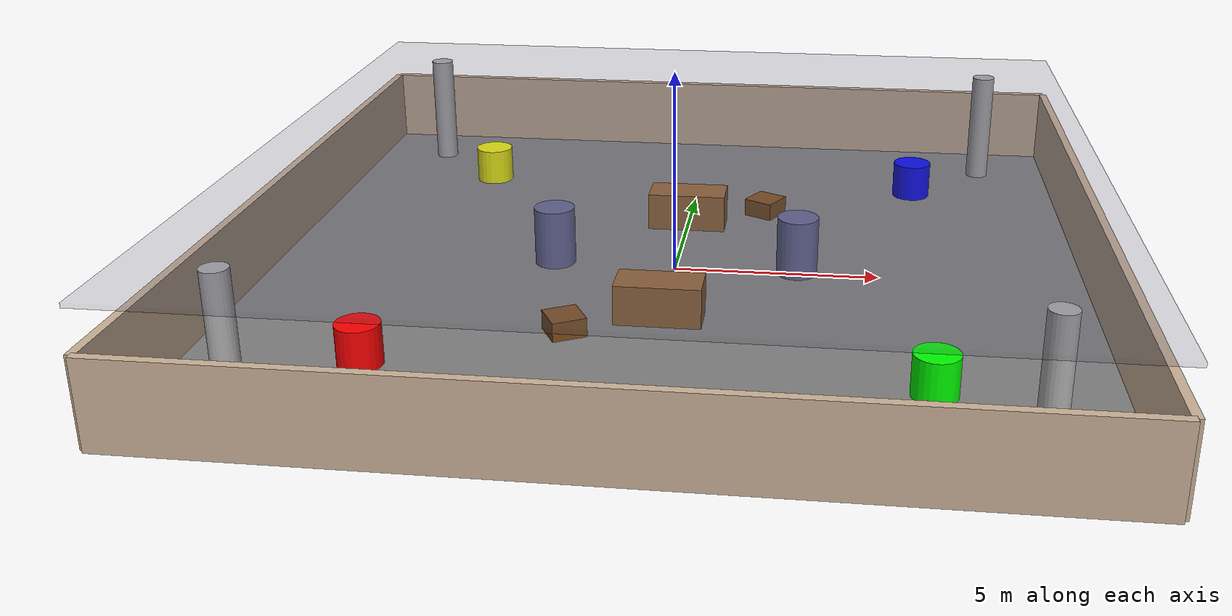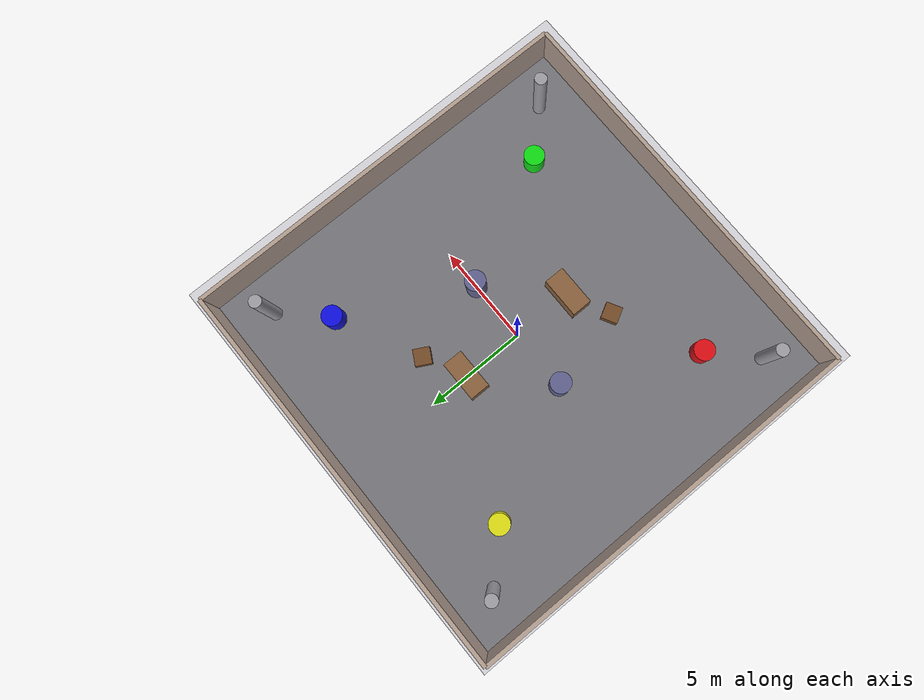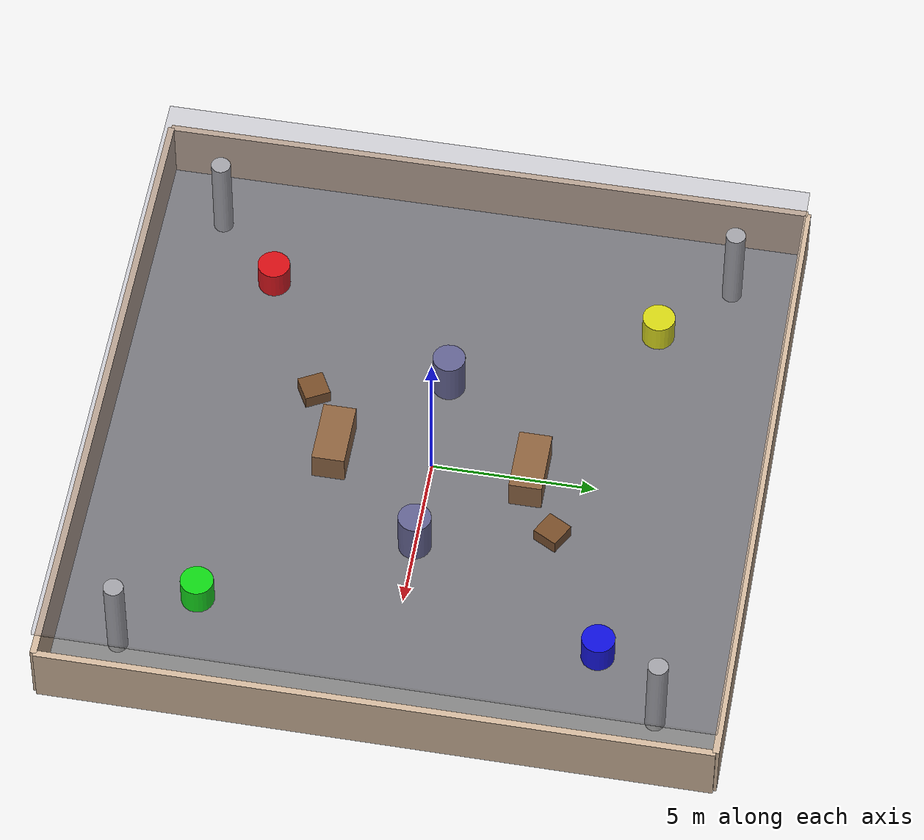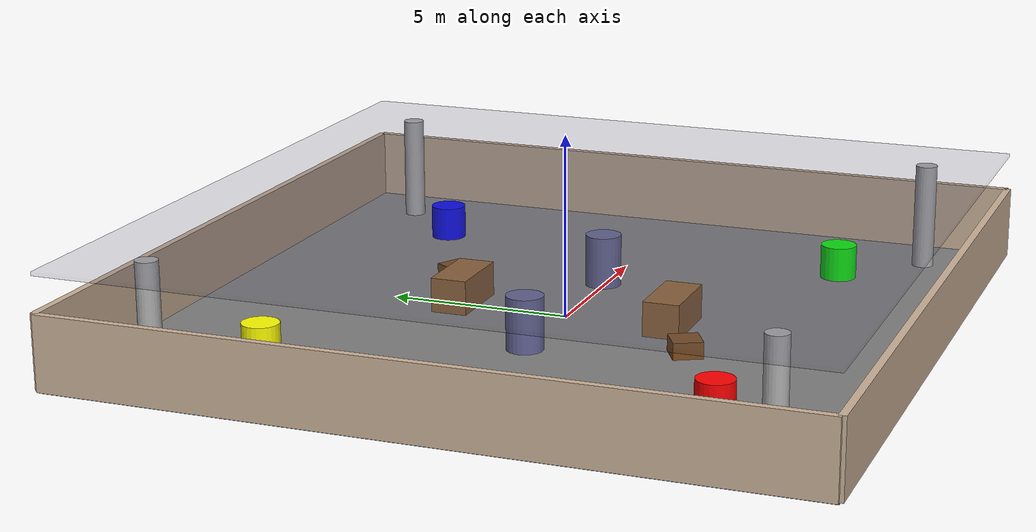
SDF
<?xml version="1.0" ?>
<sdf version="1.6">
  <world name="campus_world">

    <!-- Physics - tuned for skid steer -->
    <physics type="ode">
      <max_step_size>0.001</max_step_size>
      <real_time_factor>1</real_time_factor>
      <real_time_update_rate>1000</real_time_update_rate>
      <ode>
        <solver>
          <type>quick</type>
          <iters>150</iters>
          <sor>1.3</sor>
          <use_dynamic_moi_rescaling>true</use_dynamic_moi_rescaling>
        </solver>
        <constraints>
          <cfm>0.0001</cfm>
          <erp>0.2</erp>
          <contact_max_correcting_vel>100</contact_max_correcting_vel>
          <contact_surface_layer>0.001</contact_surface_layer>
        </constraints>
      </ode>
    </physics>

    <include>
      <uri>model://sun</uri>
    </include>

    <!-- ✅ REMOVED ground_plane include — replaced with custom below -->

    <model name="campus_building">
      <static>true</static>
      <pose>0 0 0 0 0 0</pose>

      <!-- ✅ Floor with friction on COLLISION (not visual) -->
      <link name="floor">
        <collision name="collision">
          <geometry>
            <box>
              <size>20 20 0.1</size>
            </box>
          </geometry>
          <!-- ✅ FRICTION GOES HERE -->
          <surface>
            <friction>
              <ode>
                <mu>0.6</mu>       <!-- enough grip for forward motion -->
                <mu2>0.6</mu2>     <!-- same in lateral — wheels handle slip -->
              </ode>
              <torsional>
                <coefficient>0.1</coefficient>
                <use_patch_radius>false</use_patch_radius>
              </torsional>
            </friction>
            <contact>
              <ode>
                <kp>100000.0</kp>  <!-- match wheel kp -->
                <kd>10.0</kd>
                <max_vel>0.1</max_vel>
                <min_depth>0.001</min_depth>
              </ode>
            </contact>
          </surface>
        </collision>
        <visual name="visual">
          <geometry>
            <box>
              <size>20 20 0.1</size>
            </box>
          </geometry>
          <material>
            <ambient>0.5 0.5 0.5 1</ambient>
            <diffuse>0.5 0.5 0.5 1</diffuse>
          </material>
        </visual>
      </link>

      <!-- Roof -->
      <link name="roof">
        <pose>0 0 3 0 0 0</pose>
        <visual name="visual">
          <geometry>
            <box><size>20 20 0.1</size></box>
          </geometry>
          <material>
            <ambient>0.3 0.3 0.4 0.2</ambient>
            <diffuse>0.3 0.3 0.4 0.2</diffuse>
            <transparency>0.8</transparency>
          </material>
        </visual>
      </link>

      <!-- Pillars -->
      <link name="pillar1">
        <pose>-8 -8 1.5 0 0 0</pose>
        <collision name="collision">
          <geometry><cylinder><radius>0.3</radius><length>3</length></cylinder></geometry>
        </collision>
        <visual name="visual">
          <geometry><cylinder><radius>0.3</radius><length>3</length></cylinder></geometry>
          <material><ambient>0.7 0.7 0.7 1</ambient></material>
        </visual>
      </link>
      <link name="pillar2">
        <pose>8 -8 1.5 0 0 0</pose>
        <collision name="collision">
          <geometry><cylinder><radius>0.3</radius><length>3</length></cylinder></geometry>
        </collision>
        <visual name="visual">
          <geometry><cylinder><radius>0.3</radius><length>3</length></cylinder></geometry>
          <material><ambient>0.7 0.7 0.7 1</ambient></material>
        </visual>
      </link>
      <link name="pillar3">
        <pose>-8 8 1.5 0 0 0</pose>
        <collision name="collision">
          <geometry><cylinder><radius>0.3</radius><length>3</length></cylinder></geometry>
        </collision>
        <visual name="visual">
          <geometry><cylinder><radius>0.3</radius><length>3</length></cylinder></geometry>
          <material><ambient>0.7 0.7 0.7 1</ambient></material>
        </visual>
      </link>
      <link name="pillar4">
        <pose>8 8 1.5 0 0 0</pose>
        <collision name="collision">
          <geometry><cylinder><radius>0.3</radius><length>3</length></cylinder></geometry>
        </collision>
        <visual name="visual">
          <geometry><cylinder><radius>0.3</radius><length>3</length></cylinder></geometry>
          <material><ambient>0.7 0.7 0.7 1</ambient></material>
        </visual>
      </link>

      <!-- Walls -->
      <link name="wall_north">
        <pose>0 10 1 0 0 0</pose>
        <collision name="collision">
          <geometry><box><size>20 0.2 2</size></box></geometry>
        </collision>
        <visual name="visual">
          <geometry><box><size>20 0.2 2</size></box></geometry>
          <material><ambient>0.8 0.7 0.6 1</ambient><diffuse>0.8 0.7 0.6 1</diffuse></material>
        </visual>
      </link>
      <link name="wall_south">
        <pose>0 -10 1 0 0 0</pose>
        <collision name="collision">
          <geometry><box><size>20 0.2 2</size></box></geometry>
        </collision>
        <visual name="visual">
          <geometry><box><size>20 0.2 2</size></box></geometry>
          <material><ambient>0.8 0.7 0.6 1</ambient><diffuse>0.8 0.7 0.6 1</diffuse></material>
        </visual>
      </link>
      <link name="wall_east">
        <pose>10 0 1 0 0 0</pose>
        <collision name="collision">
          <geometry><box><size>0.2 20 2</size></box></geometry>
        </collision>
        <visual name="visual">
          <geometry><box><size>0.2 20 2</size></box></geometry>
          <material><ambient>0.8 0.7 0.6 1</ambient><diffuse>0.8 0.7 0.6 1</diffuse></material>
        </visual>
      </link>
      <link name="wall_west">
        <pose>-10 0 1 0 0 0</pose>
        <collision name="collision">
          <geometry><box><size>0.2 20 2</size></box></geometry>
        </collision>
        <visual name="visual">
          <geometry><box><size>0.2 20 2</size></box></geometry>
          <material><ambient>0.8 0.7 0.6 1</ambient><diffuse>0.8 0.7 0.6 1</diffuse></material>
        </visual>
      </link>
    </model>

    <!-- Checkpoints and obstacles remain unchanged -->
    <model name="checkpoint1">
      <static>true</static>
      <pose>-6 -6 0.5 0 0 0</pose>
      <link name="link">
        <collision name="collision"><geometry><cylinder><radius>0.5</radius><length>1</length></cylinder></geometry></collision>
        <visual name="visual"><geometry><cylinder><radius>0.5</radius><length>1</length></cylinder></geometry><material><ambient>1 0 0 1</ambient><diffuse>1 0 0 1</diffuse></material></visual>
      </link>
    </model>
    <model name="checkpoint2">
      <static>true</static>
      <pose>6 -6 0.5 0 0 0</pose>
      <link name="link">
        <collision name="collision"><geometry><cylinder><radius>0.5</radius><length>1</length></cylinder></geometry></collision>
        <visual name="visual"><geometry><cylinder><radius>0.5</radius><length>1</length></cylinder></geometry><material><ambient>0 1 0 1</ambient><diffuse>0 1 0 1</diffuse></material></visual>
      </link>
    </model>
    <model name="checkpoint3">
      <static>true</static>
      <pose>6 6 0.5 0 0 0</pose>
      <link name="link">
        <collision name="collision"><geometry><cylinder><radius>0.5</radius><length>1</length></cylinder></geometry></collision>
        <visual name="visual"><geometry><cylinder><radius>0.5</radius><length>1</length></cylinder></geometry><material><ambient>0 0 1 1</ambient><diffuse>0 0 1 1</diffuse></material></visual>
      </link>
    </model>
    <model name="checkpoint4">
      <static>true</static>
      <pose>-6 6 0.5 0 0 0</pose>
      <link name="link">
        <collision name="collision"><geometry><cylinder><radius>0.5</radius><length>1</length></cylinder></geometry></collision>
        <visual name="visual"><geometry><cylinder><radius>0.5</radius><length>1</length></cylinder></geometry><material><ambient>1 1 0 1</ambient><diffuse>1 1 0 1</diffuse></material></visual>
      </link>
    </model>

    <model name="obstacle_box1">
      <static>true</static><pose>0 -3 0.5 0 0 0</pose>
      <link name="link">
        <collision name="collision"><geometry><box><size>2 1 1</size></box></geometry></collision>
        <visual name="visual"><geometry><box><size>2 1 1</size></box></geometry><material><ambient>0.6 0.4 0.2 1</ambient><diffuse>0.6 0.4 0.2 1</diffuse></material></visual>
      </link>
    </model>
    <model name="obstacle_box2">
      <static>true</static><pose>0 3 0.5 0 0 0</pose>
      <link name="link">
        <collision name="collision"><geometry><box><size>2 1 1</size></box></geometry></collision>
        <visual name="visual"><geometry><box><size>2 1 1</size></box></geometry><material><ambient>0.6 0.4 0.2 1</ambient><diffuse>0.6 0.4 0.2 1</diffuse></material></visual>
      </link>
    </model>
    <model name="obstacle_cylinder1">
      <static>true</static><pose>-3 0 0.75 0 0 0</pose>
      <link name="link">
        <collision name="collision"><geometry><cylinder><radius>0.5</radius><length>1.5</length></cylinder></geometry></collision>
        <visual name="visual"><geometry><cylinder><radius>0.5</radius><length>1.5</length></cylinder></geometry><material><ambient>0.4 0.4 0.6 1</ambient><diffuse>0.4 0.4 0.6 1</diffuse></material></visual>
      </link>
    </model>
    <model name="obstacle_cylinder2">
      <static>true</static><pose>3 0 0.75 0 0 0</pose>
      <link name="link">
        <collision name="collision"><geometry><cylinder><radius>0.5</radius><length>1.5</length></cylinder></geometry></collision>
        <visual name="visual"><geometry><cylinder><radius>0.5</radius><length>1.5</length></cylinder></geometry><material><ambient>0.4 0.4 0.6 1</ambient><diffuse>0.4 0.4 0.6 1</diffuse></material></visual>
      </link>
    </model>
    <model name="small_obstacle1">
      <static>true</static><pose>-2 -4 0.25 0 0 0.5</pose>
      <link name="link">
        <collision name="collision"><geometry><box><size>0.8 0.8 0.5</size></box></geometry></collision>
        <visual name="visual"><geometry><box><size>0.8 0.8 0.5</size></box></geometry><material><ambient>0.5 0.3 0.1 1</ambient><diffuse>0.5 0.3 0.1 1</diffuse></material></visual>
      </link>
    </model>
    <model name="small_obstacle2">
      <static>true</static><pose>2 4 0.25 0 0 -0.5</pose>
      <link name="link">
        <collision name="collision"><geometry><box><size>0.8 0.8 0.5</size></box></geometry></collision>
        <visual name="visual"><geometry><box><size>0.8 0.8 0.5</size></box></geometry><material><ambient>0.5 0.3 0.1 1</ambient><diffuse>0.5 0.3 0.1 1</diffuse></material></visual>
      </link>
    </model>

    <gui fullscreen='0'>
      <camera name='user_camera'>
        <pose>15 -15 10 0 0.4 2.356</pose>
        <view_controller>orbit</view_controller>
      </camera>
    </gui>

  </world>
</sdf>
